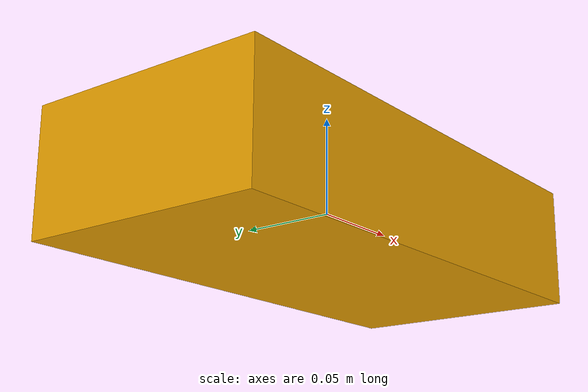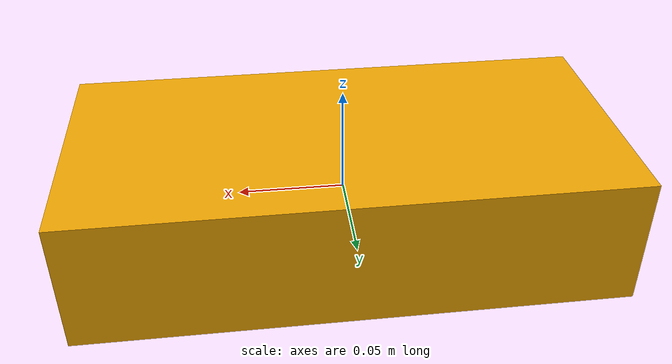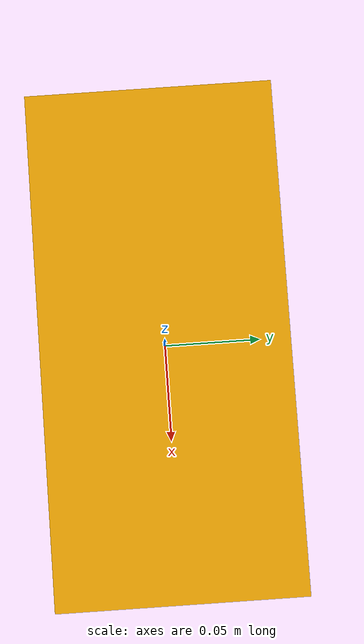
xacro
<?xml version="1.0" ?>
<robot name="aries" xmlns:xacro="http://www.ros.org/wiki/xacro">
  <!--                            BOAT HULL                                  -->
  <link name="boat_hull">
    <visual>
      <geometry>
      <box size="0.254000 0.123193 0.062000"/>
      </geometry>
    </visual>

    <collision>
      <geometry>
        <box size="0.254000 0.123193 0.062000" />
      </geometry>
    </collision>

    <inertial>
       <mass value="0.8" />
       <inertia
	      ixx="0.107618"
	      ixy="0.000000"
	      ixz="0.000000"
	      iyy="0.103179"
	      iyz="0.000000"
	      izz="0.098577"
       />
    </inertial>
  </link>

  <gazebo>
    <static>false</static>
  </gazebo>

</robot>
